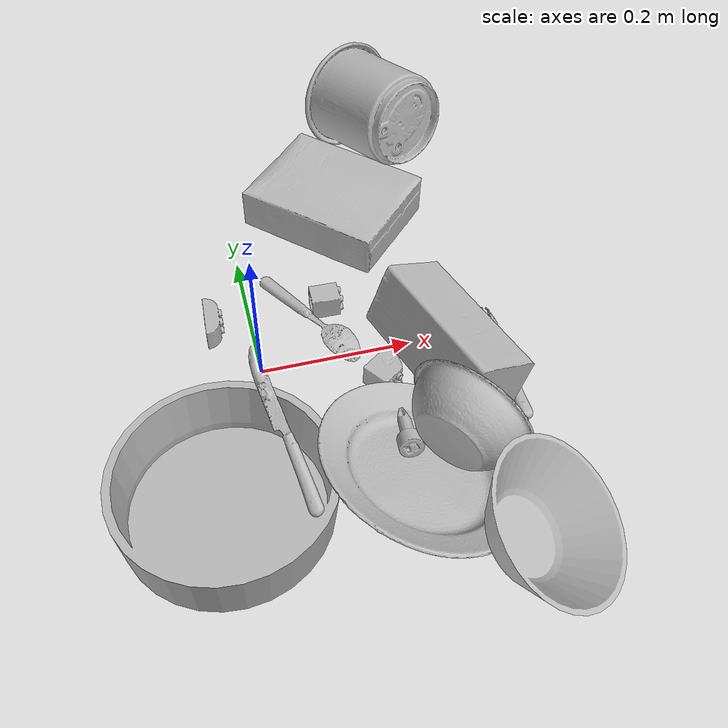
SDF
<sdf version="1.4">
  <world name="default">
    <light name="light1" type="point">
      <pose>0 0 1 0 0 0</pose>
      <diffuse>3 3 3 1</diffuse>
      <specular>3 3 3 1</specular>
    </light>
    <light name="light2" type="point">
      <pose>0 0.5 2 0 0 0</pose>
      <diffuse>1 1 1 1</diffuse>
      <specular>1 1 1 1</specular>
    </light>
    <light name="light3" type="point">
      <pose>0 0.5 2 0 0 0</pose>
      <diffuse>3 3 3 1</diffuse>
      <specular>3 3 3 1</specular>
    </light>
    <scene>
      <ambient>0.7 0.7 0.7</ambient>
    </scene>
    <model name="plate1">
      <link name="link_plate1">
        <collision name="default">
          <geometry>
            <mesh>
              <uri>model://pan_tefal/collision_meshes/collision.obj</uri>
              <scale>1.0 1.0 1.0</scale>
            </mesh>
          </geometry>
          <surface>
            <friction>
              <ode>
                <mu>0.5</mu>
                <mu2>0.5</mu2>
              </ode>
            </friction>
          <contact>
        <ode>
            <max_vel>0</max_vel>
            <min_depth>0.0001</min_depth>
            <kp>1e8</kp>
        </ode>
    </contact></surface>
        </collision>
        <visual name="default">
          <geometry>
            <mesh>
              <uri>model://pan_tefal/visual_meshes/visual.dae</uri>
              <scale>1.0 1.0 1.0</scale>
            </mesh>
          </geometry>
        </visual>
        <inertial>
          <mass>1.083925485610962</mass>
          <pose>-0.00018002053548116237 3.279013617429882e-05 -0.00851493701338768 0.000819031166138591 -0.00033013701589440335 -0.33186472787035126</pose>
          <inertia>
            <ixx>0.0074822875</ixx>
            <iyy>0.0075305253</iyy>
            <izz>0.013773448</izz>
            <ixy>0</ixy>
            <ixz>0</ixz>
            <iyz>0</iyz>
          </inertia>
        </inertial>
      </link>
      <pose>-0.07303784787654877 -0.19445230066776276 0.038050007075071335 -4.868047033449825e-07 -2.8484533943597346e-07 1.5844183847496498</pose>
    </model>
    <model name="plate2">
      <link name="link_plate2">
        <collision name="default">
          <geometry>
            <mesh>
              <uri>model://plate/collision_meshes/collision.obj</uri>
              <scale>1.0 1.0 1.0</scale>
            </mesh>
          </geometry>
          <surface>
            <friction>
              <ode>
                <mu>0.5</mu>
                <mu2>0.5</mu2>
              </ode>
            </friction>
          <contact>
        <ode>
            <max_vel>0</max_vel>
            <min_depth>0.0001</min_depth>
            <kp>1e8</kp>
        </ode>
    </contact></surface>
        </collision>
        <visual name="default">
          <geometry>
            <mesh>
              <uri>model://plate/visual_meshes/visual.dae</uri>
              <scale>1.0 1.0 1.0</scale>
            </mesh>
          </geometry>
        </visual>
        <inertial>
          <mass>0.26740342378616333</mass>
          <pose>-0.00060446304269135 0.00027825793949887156 -0.0010561994276940823 0.0022187903743134635 -0.0032254779444460427 0.4526079808055429</pose>
          <inertia>
            <ixx>0.0012509191</ixx>
            <iyy>0.0012389544</iyy>
            <izz>0.00244661</izz>
            <ixy>0</ixy>
            <ixz>0</ixz>
            <iyz>0</iyz>
          </inertia>
        </inertial>
      </link>
      <pose>0.15335555374622345 -0.21941083669662476 0.04122794046998024 0.3383410701272937 0.12217751418697516 1.5087355410996073</pose>
    </model>
    <model name="bowl1">
      <link name="link_bowl1">
        <collision name="default">
          <geometry>
            <mesh>
              <uri>model://bowl/collision_meshes/collision.obj</uri>
              <scale>1.0 1.0 1.0</scale>
            </mesh>
          </geometry>
          <surface>
            <friction>
              <ode>
                <mu>0.5</mu>
                <mu2>0.5</mu2>
              </ode>
            </friction>
          <contact>
        <ode>
            <max_vel>0</max_vel>
            <min_depth>0.0001</min_depth>
            <kp>1e8</kp>
        </ode>
    </contact></surface>
        </collision>
        <visual name="default">
          <geometry>
            <mesh>
              <uri>model://bowl/visual_meshes/visual.dae</uri>
              <scale>1.0 1.0 1.0</scale>
            </mesh>
          </geometry>
        </visual>
        <inertial>
          <mass>0.062040042132139206</mass>
          <pose>0.00020445157133508474 -0.001030211104080081 -0.0008042659028433263 -0.01576411046463803 0.014546752923574583 0.7140383763158871</pose>
          <inertia>
            <ixx>0.00014251085</ixx>
            <iyy>0.0001393266</iyy>
            <izz>0.00023975229</izz>
            <ixy>0</ixy>
            <ixz>0</ixz>
            <iyz>0</iyz>
          </inertia>
        </inertial>
      </link>
      <pose>0.20049801468849182 -0.2025126814842224 0.08629237860441208 1.4270928596990295 -0.8012133433143046 2.3839334254000044</pose>
    </model>
    <model name="bowl2">
      <link name="link_bowl2">
        <collision name="default">
          <geometry>
            <mesh>
              <uri>model://bowl_a/collision_meshes/collision.obj</uri>
              <scale>1.0 1.0 1.0</scale>
            </mesh>
          </geometry>
          <surface>
            <friction>
              <ode>
                <mu>0.5</mu>
                <mu2>0.5</mu2>
              </ode>
            </friction>
          <contact>
        <ode>
            <max_vel>0</max_vel>
            <min_depth>0.0001</min_depth>
            <kp>1e8</kp>
        </ode>
    </contact></surface>
        </collision>
        <visual name="default">
          <geometry>
            <mesh>
              <uri>model://bowl_a/visual_meshes/visual.dae</uri>
              <scale>1.0 1.0 1.0</scale>
            </mesh>
          </geometry>
        </visual>
        <inertial>
          <mass>0.2882154881954193</mass>
          <pose>0.00027867534663528204 4.731079752673395e-05 -0.0013765293406322598 -0.0009805311525578244 -0.0010938248781945461 -0.19124031319294812</pose>
          <inertia>
            <ixx>0.00082056265</ixx>
            <iyy>0.0008256004</iyy>
            <izz>0.001459402</izz>
            <ixy>0</ixy>
            <ixz>0</ixz>
            <iyz>0</iyz>
          </inertia>
        </inertial>
      </link>
      <pose>0.25110194087028503 -0.3329504132270813 0.057573966681957245 -0.63126675049267 -0.06851609675289963 -2.139879854770312</pose>
    </model>
    <model name="silverware1">
      <link name="link_silverware1">
        <collision name="default">
          <geometry>
            <mesh>
              <uri>model://fork/collision_meshes/collision.obj</uri>
              <scale>1.0 1.0 1.0</scale>
            </mesh>
          </geometry>
          <surface>
            <friction>
              <ode>
                <mu>0.5</mu>
                <mu2>0.5</mu2>
              </ode>
            </friction>
          <contact>
        <ode>
            <max_vel>0</max_vel>
            <min_depth>0.0001</min_depth>
            <kp>1e8</kp>
        </ode>
    </contact></surface>
        </collision>
        <visual name="default">
          <geometry>
            <mesh>
              <uri>model://fork/visual_meshes/visual.dae</uri>
              <scale>1.0 1.0 1.0</scale>
            </mesh>
          </geometry>
        </visual>
        <inertial>
          <mass>0.01398836076259613</mass>
          <pose>-0.02957003563642502 0.00046588244731538 0.0003218861238565296 -0.013550934691899108 -0.010977833142804767 0.01445389655901604</pose>
          <inertia>
            <ixx>4.903713e-07</ixx>
            <iyy>3.6519592e-05</iyy>
            <izz>3.673893e-05</izz>
            <ixy>0</ixy>
            <ixz>0</ixz>
            <iyz>0</iyz>
          </inertia>
        </inertial>
      </link>
      <pose>0.3082641363143921 -0.061596304178237915 0.007446620613336563 -3.0634944356155454 0.0028358696803508403 1.5561780283911422</pose>
    </model>
    <model name="box1">
      <link name="link_box1">
        <collision name="default">
          <geometry>
            <mesh>
              <uri>model://cracker_box/collision_meshes/collision.obj</uri>
              <scale>1.0 1.0 1.0</scale>
            </mesh>
          </geometry>
          <surface>
            <friction>
              <ode>
                <mu>0.5</mu>
                <mu2>0.5</mu2>
              </ode>
            </friction>
          <contact>
        <ode>
            <max_vel>0</max_vel>
            <min_depth>0.0001</min_depth>
            <kp>1e8</kp>
        </ode>
    </contact></surface>
        </collision>
        <visual name="default">
          <geometry>
            <mesh>
              <uri>model://cracker_box/visual_meshes/visual.dae</uri>
              <scale>1.0 1.0 1.0</scale>
            </mesh>
          </geometry>
        </visual>
        <inertial>
          <mass>3.3038947582244873</mass>
          <pose>0.0009464139584451914 0.00025434247800149024 -0.0017029535956680775 -0.00031620753779881404 -0.011106489600569465 0.002546794535826719</pose>
          <inertia>
            <ixx>0.008403633</ixx>
            <iyy>0.013876048</iyy>
            <izz>0.019802397</izz>
            <ixy>0</ixy>
            <ixz>0</ixz>
            <iyz>0</iyz>
          </inertia>
        </inertial>
      </link>
      <pose>0.15592186152935028 0.2624116539955139 0.03553301468491554 3.1374963467305266 -0.01642528245216349 2.3787818406163628</pose>
    </model>
    <model name="box2">
      <link name="link_box2">
        <collision name="default">
          <geometry>
            <mesh>
              <uri>model://wood_block/collision_meshes/collision.obj</uri>
              <scale>1.0 1.0 1.0</scale>
            </mesh>
          </geometry>
          <surface>
            <friction>
              <ode>
                <mu>0.5</mu>
                <mu2>0.5</mu2>
              </ode>
            </friction>
          <contact>
        <ode>
            <max_vel>0</max_vel>
            <min_depth>0.0001</min_depth>
            <kp>1e8</kp>
        </ode>
    </contact></surface>
        </collision>
        <visual name="default">
          <geometry>
            <mesh>
              <uri>model://wood_block/visual_meshes/visual.dae</uri>
              <scale>1.0 1.0 1.0</scale>
            </mesh>
          </geometry>
        </visual>
        <inertial>
          <mass>1.8317598104476929</mass>
          <pose>-5.813315510749817e-06 -0.000570809468626976 0.0002640858292579651 -0.05220774405774941 -0.005192695034541599 -0.006861378043904631</pose>
          <inertia>
            <ixx>0.0024511719</ixx>
            <iyy>0.0077432534</iyy>
            <izz>0.007714289</izz>
            <ixy>0</ixy>
            <ixz>0</ixz>
            <iyz>0</iyz>
          </inertia>
        </inertial>
      </link>
      <pose>0.23202936351299286 -0.05220270901918411 0.057812634855508804 -2.7399988957686134 5.6872358553046005e-05 1.8762592900077553</pose>
    </model>
    <model name="cup1">
      <link name="link_cup1">
        <collision name="default">
          <geometry>
            <mesh>
              <uri>model://f_cups/collision_meshes/collision.obj</uri>
              <scale>2.0 2.0 2.0</scale>
            </mesh>
          </geometry>
          <surface>
            <friction>
              <ode>
                <mu>0.5</mu>
                <mu2>0.5</mu2>
              </ode>
            </friction>
          <contact>
        <ode>
            <max_vel>0</max_vel>
            <min_depth>0.0001</min_depth>
            <kp>1e8</kp>
        </ode>
    </contact></surface>
        </collision>
        <visual name="default">
          <geometry>
            <mesh>
              <uri>model://f_cups/visual_meshes/visual.dae</uri>
              <scale>2.0 2.0 2.0</scale>
            </mesh>
          </geometry>
        </visual>
        <inertial>
          <mass>0.8281989693641663</mass>
          <pose>-0.006342937704175711 -0.0012480166042223573 -0.007311076857149601 0.7862278170542254 -0.2607923358756499 -0.18237381375543787</pose>
          <inertia>
            <ixx>0.003114117</ixx>
            <iyy>0.0032667436</iyy>
            <izz>0.0034007723</izz>
            <ixy>0</ixy>
            <ixz>0</ixz>
            <iyz>0</iyz>
          </inertia>
        </inertial>
      </link>
      <pose>0.24501773715019226 0.3526652157306671 0.12363044172525406 1.7290738504673189 -0.37798314204075706 -2.7030126011139037</pose>
    </model>
    <model name="silverware2">
      <link name="link_silverware2">
        <collision name="default">
          <geometry>
            <mesh>
              <uri>model://knife/collision_meshes/collision.obj</uri>
              <scale>1.0 1.0 1.0</scale>
            </mesh>
          </geometry>
          <surface>
            <friction>
              <ode>
                <mu>0.5</mu>
                <mu2>0.5</mu2>
              </ode>
            </friction>
          <contact>
        <ode>
            <max_vel>0</max_vel>
            <min_depth>0.0001</min_depth>
            <kp>1e8</kp>
        </ode>
    </contact></surface>
        </collision>
        <visual name="default">
          <geometry>
            <mesh>
              <uri>model://knife/visual_meshes/visual.dae</uri>
              <scale>1.0 1.0 1.0</scale>
            </mesh>
          </geometry>
        </visual>
        <inertial>
          <mass>0.033610157668590546</mass>
          <pose>-0.02378525771200657 0.0015275131445378065 5.0620201363926753e-05 0.07305356746503441 0.01724842347870745 -0.0074098216508425</pose>
          <inertia>
            <ixx>9.539925e-07</ixx>
            <iyy>0.00012912478</iyy>
            <izz>0.00012943202</izz>
            <ixy>0</ixy>
            <ixz>0</ixz>
            <iyz>0</iyz>
          </inertia>
        </inertial>
      </link>
      <pose>0.004683014936745167 -0.1388055980205536 0.05857488885521889 2.730505355808048 -0.4493279826052991 1.7842532107534417</pose>
    </model>
    <model name="silverware3">
      <link name="link_silverware3">
        <collision name="default">
          <geometry>
            <mesh>
              <uri>model://spoon/collision_meshes/collision.obj</uri>
              <scale>1.0 1.0 1.0</scale>
            </mesh>
          </geometry>
          <surface>
            <friction>
              <ode>
                <mu>0.5</mu>
                <mu2>0.5</mu2>
              </ode>
            </friction>
          <contact>
        <ode>
            <max_vel>0</max_vel>
            <min_depth>0.0001</min_depth>
            <kp>1e8</kp>
        </ode>
    </contact></surface>
        </collision>
        <visual name="default">
          <geometry>
            <mesh>
              <uri>model://spoon/visual_meshes/visual.dae</uri>
              <scale>1.0 1.0 1.0</scale>
            </mesh>
          </geometry>
        </visual>
        <inertial>
          <mass>0.03036251850426197</mass>
          <pose>-0.005526314955204725 -0.0016034168656915426 -0.0007271655485965312 0.035217258575681115 -0.03906584346489495 0.006150616147242728</pose>
          <inertia>
            <ixx>1.6888126e-06</ixx>
            <iyy>0.00011552838</iyy>
            <izz>0.00011636122</izz>
            <ixy>0</ixy>
            <ixz>0</ixz>
            <iyz>0</iyz>
          </inertia>
        </inertial>
      </link>
      <pose>0.0760175883769989 0.0709768757224083 0.010164020583033562 3.135239386391981 -0.06192924095226295 -1.0531882337453178</pose>
    </model>
    <model name="toy1">
      <link name="link_toy1">
        <collision name="default">
          <geometry>
            <mesh>
              <uri>model://d_lego_duplo/collision_meshes/collision.obj</uri>
              <scale>1.0 1.0 1.0</scale>
            </mesh>
          </geometry>
          <surface>
            <friction>
              <ode>
                <mu>0.5</mu>
                <mu2>0.5</mu2>
              </ode>
            </friction>
          <contact>
        <ode>
            <max_vel>0</max_vel>
            <min_depth>0.0001</min_depth>
            <kp>1e8</kp>
        </ode>
    </contact></surface>
        </collision>
        <visual name="default">
          <geometry>
            <mesh>
              <uri>model://d_lego_duplo/visual_meshes/visual.dae</uri>
              <scale>1.0 1.0 1.0</scale>
            </mesh>
          </geometry>
        </visual>
        <inertial>
          <mass>0.05888136848807335</mass>
          <pose>0.00283056334592402 0.00016366125782951713 0.0008589810458943248 0.0801088994423302 -0.3835518637869403 0.0010296847698221781</pose>
          <inertia>
            <ixx>1.1398561e-05</ixx>
            <iyy>1.6177655e-05</iyy>
            <izz>1.5601077e-05</izz>
            <ixy>0</ixy>
            <ixz>0</ixz>
            <iyz>0</iyz>
          </inertia>
        </inertial>
      </link>
      <pose>0.15508753061294556 -0.054003410041332245 0.016376972198486328 -1.5725677202656436 -0.0072075412893988005 -2.527601808187179</pose>
    </model>
    <model name="toy2">
      <link name="link_toy2">
        <collision name="default">
          <geometry>
            <mesh>
              <uri>model://d_toy_airplane/collision_meshes/collision.obj</uri>
              <scale>1.0 1.0 1.0</scale>
            </mesh>
          </geometry>
          <surface>
            <friction>
              <ode>
                <mu>0.5</mu>
                <mu2>0.5</mu2>
              </ode>
            </friction>
          <contact>
        <ode>
            <max_vel>0</max_vel>
            <min_depth>0.0001</min_depth>
            <kp>1e8</kp>
        </ode>
    </contact></surface>
        </collision>
        <visual name="default">
          <geometry>
            <mesh>
              <uri>model://d_toy_airplane/visual_meshes/visual.dae</uri>
              <scale>1.0 1.0 1.0</scale>
            </mesh>
          </geometry>
        </visual>
        <inertial>
          <mass>0.019283337518572807</mass>
          <pose>9.410297934664413e-05 -5.809335198136978e-05 -0.011728096753358841 0.00026677547083937895 0.00467899750463603 0.5194224971352938</pose>
          <inertia>
            <ixx>5.7807692e-06</ixx>
            <iyy>5.78513e-06</iyy>
            <izz>1.7452522e-06</izz>
            <ixy>0</ixy>
            <ixz>0</ixz>
            <iyz>0</iyz>
          </inertia>
        </inertial>
      </link>
      <pose>0.1489386409521103 -0.16039203107357025 0.04229064658284187 -2.04998986208107 1.215358172940574 -0.5333158911437224</pose>
    </model>
    <model name="toy3">
      <link name="link_toy3">
        <collision name="default">
          <geometry>
            <mesh>
              <uri>model://b_lego_duplo/collision_meshes/collision.obj</uri>
              <scale>1.0 1.0 1.0</scale>
            </mesh>
          </geometry>
          <surface>
            <friction>
              <ode>
                <mu>0.5</mu>
                <mu2>0.5</mu2>
              </ode>
            </friction>
          <contact>
        <ode>
            <max_vel>0</max_vel>
            <min_depth>0.0001</min_depth>
            <kp>1e8</kp>
        </ode>
    </contact></surface>
        </collision>
        <visual name="default">
          <geometry>
            <mesh>
              <uri>model://b_lego_duplo/visual_meshes/visual.dae</uri>
              <scale>1.0 1.0 1.0</scale>
            </mesh>
          </geometry>
        </visual>
        <inertial>
          <mass>0.03460631147027016</mass>
          <pose>-0.00011053022171836346 -9.15238524612505e-06 0.0019294291269034147 -0.037494934713503944 -0.026353982766830427 0.45190023703794546</pose>
          <inertia>
            <ixx>7.082442e-06</ixx>
            <iyy>7.1300533e-06</iyy>
            <izz>6.310225e-06</izz>
            <ixy>0</ixy>
            <ixz>0</ixz>
            <iyz>0</iyz>
          </inertia>
        </inertial>
      </link>
      <pose>0.1062050312757492 0.08807113766670227 0.016152339056134224 -3.1204417260871136 1.5624389154994083 3.136572146026574</pose>
    </model>
    <model name="toy4">
      <link name="link_toy4">
        <collision name="default">
          <geometry>
            <mesh>
              <uri>model://c_toy_airplane/collision_meshes/collision.obj</uri>
              <scale>1.0 1.0 1.0</scale>
            </mesh>
          </geometry>
          <surface>
            <friction>
              <ode>
                <mu>0.5</mu>
                <mu2>0.5</mu2>
              </ode>
            </friction>
          <contact>
        <ode>
            <max_vel>0</max_vel>
            <min_depth>0.0001</min_depth>
            <kp>1e8</kp>
        </ode>
    </contact></surface>
        </collision>
        <visual name="default">
          <geometry>
            <mesh>
              <uri>model://c_toy_airplane/visual_meshes/visual.dae</uri>
              <scale>1.0 1.0 1.0</scale>
            </mesh>
          </geometry>
        </visual>
        <inertial>
          <mass>0.03008922003209591</mass>
          <pose>-0.00023024248366709799 -4.429292062013701e-07 -0.006080532446503639 -0.006192764609865116 -0.016797726061543002 0.7654936540566961</pose>
          <inertia>
            <ixx>1.3816358e-05</ixx>
            <iyy>1.3777365e-05</iyy>
            <izz>3.2438072e-06</izz>
            <ixy>0</ixy>
            <ixz>0</ixz>
            <iyz>0</iyz>
          </inertia>
        </inertial>
      </link>
      <pose>0.2956657409667969 0.3786071240901947 0.03348749503493309 3.119699680507614 -0.006950809736417817 -0.8755742458066923</pose>
    </model>
    <model name="toy5">
      <link name="link_toy5">
        <collision name="default">
          <geometry>
            <mesh>
              <uri>model://a_lego_duplo/collision_meshes/collision.obj</uri>
              <scale>1.0 1.0 1.0</scale>
            </mesh>
          </geometry>
          <surface>
            <friction>
              <ode>
                <mu>0.5</mu>
                <mu2>0.5</mu2>
              </ode>
            </friction>
          <contact>
        <ode>
            <max_vel>0</max_vel>
            <min_depth>0.0001</min_depth>
            <kp>1e8</kp>
        </ode>
    </contact></surface>
        </collision>
        <visual name="default">
          <geometry>
            <mesh>
              <uri>model://a_lego_duplo/visual_meshes/visual.dae</uri>
              <scale>1.0 1.0 1.0</scale>
            </mesh>
          </geometry>
        </visual>
        <inertial>
          <mass>0.02472195029258728</mass>
          <pose>-0.00011337580508552492 0.00018517558055464178 0.0003692609316203743 -0.014116968053030856 -0.00012565531185804749 6.140757465531037e-05</pose>
          <inertia>
            <ixx>3.1695524e-06</ixx>
            <iyy>7.100487e-06</iyy>
            <izz>8.795534e-06</izz>
            <ixy>0</ixy>
            <ixz>0</ixz>
            <iyz>0</iyz>
          </inertia>
        </inertial>
      </link>
      <pose>-0.04843755438923836 0.08511297404766083 0.016109006479382515 1.570796988348841 3.4359170238103364e-07 1.5245340687754116</pose>
    </model>
  <physics type="ode">
      <max_contacts>50</max_contacts>
      <ode>
        <solver>
          <type>quick</type>
          <iters>75</iters>
        </solver>
        <constraints>
          <contact_max_correcting_vel>0</contact_max_correcting_vel>
          <contact_surface_layer>0</contact_surface_layer>
        </constraints>
      </ode>
    </physics></world>
</sdf>
